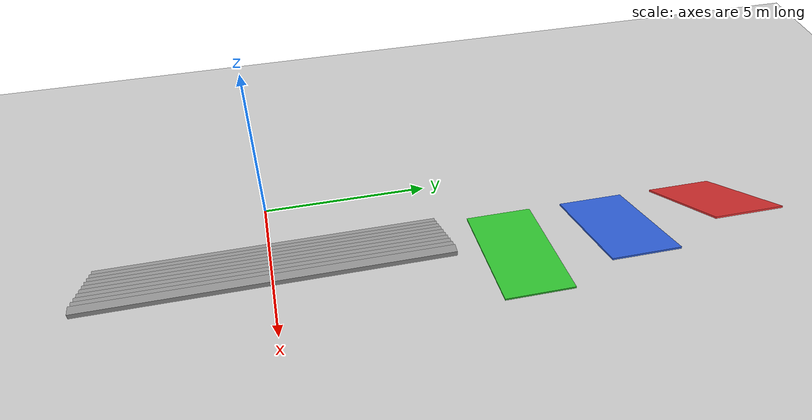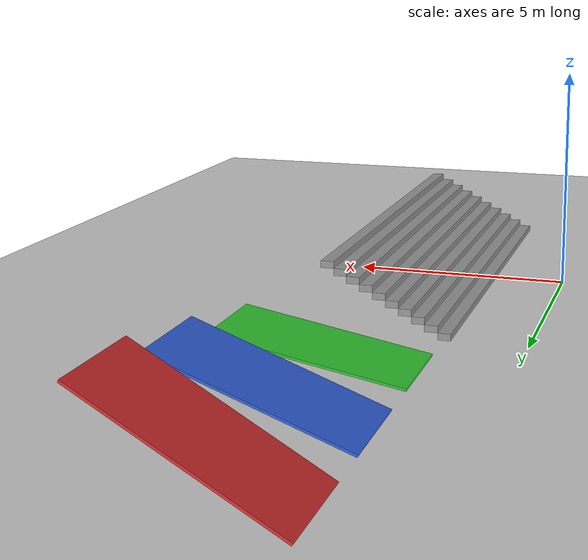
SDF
<?xml version="1.0" ?>
<sdf version="1.5">
    <world name="default">

        <physics type="ode">
            <max_step_size>0.0005</max_step_size>
            <real_time_factor>1</real_time_factor>
            <real_time_update_rate>2000</real_time_update_rate>
            <gravity>0 0 -9.81</gravity>
            <ode>
                <solver>
                    <type>quick</type>
                    <iters>50</iters>
                    <sor>1.3</sor>
                </solver>
                <constraints>
                    <cfm>0.0</cfm>
                    <erp>0.2</erp>
                    <contact_max_correcting_vel>10.0</contact_max_correcting_vel>
                    <contact_surface_layer>0.001</contact_surface_layer>
                </constraints>
            </ode>
        </physics>

        <scene>
        <sky>
            <clouds>
                <speed>12</speed>
            </clouds>
        </sky>
        </scene>
        <!-- A global light source -->
        <include>
            <uri>model://sun</uri>
        </include>
        <!-- A ground plane -->
        <include>
            <uri>model://ground_plane</uri>
        </include>
        <!-- environment blocks, obstacles or stairs -->
        <model name="static_environment">
        <static>true</static>

            <link name='Stairs'>
                <pose>3 0 0 0 0 0</pose>
                <scale>1 1 1</scale>
                <visual name='Stairs_Visual_0'>
                    <pose>-1.26 -0 0.075 0 -0 1.5708</pose>
                    <geometry>
                    <box>
                        <size>10 0.28 0.15</size>
                    </box>
                    </geometry>
                    <material>
                    <script>
                        <uri>file://media/materials/scripts/gazebo.material</uri>
                        <name>Gazebo/Grey</name>
                    </script>
                    <ambient>1 1 1 1</ambient>
                    </material>
                    <meta>
                    <layer>0</layer>
                    </meta>
                </visual>
                <collision name='Stairs_Collision_0'>
                    <geometry>
                    <box>
                        <size>10 0.28 0.15</size>
                    </box>
                    </geometry>
                    <pose>-1.26 -0 0.075 0 -0 1.5708</pose>
                </collision>
                <visual name='Stairs_Visual_1'>
                    <pose>-0.98 -0 0.225 0 -0 1.5708</pose>
                    <geometry>
                    <box>
                        <size>10 0.28 0.15</size>
                    </box>
                    </geometry>
                    <material>
                    <script>
                        <uri>file://media/materials/scripts/gazebo.material</uri>
                        <name>Gazebo/Grey</name>
                    </script>
                    <ambient>1 1 1 1</ambient>
                    </material>
                    <meta>
                    <layer>0</layer>
                    </meta>
                </visual>
                <collision name='Stairs_Collision_1'>
                    <geometry>
                    <box>
                        <size>10 0.28 0.15</size>
                    </box>
                    </geometry>
                    <pose>-0.98 -0 0.225 0 -0 1.5708</pose>
                </collision>
                <visual name='Stairs_Visual_2'>
                    <pose>-0.7 -0 0.375 0 -0 1.5708</pose>
                    <geometry>
                    <box>
                        <size>10 0.28 0.15</size>
                    </box>
                    </geometry>
                    <material>
                    <script>
                        <uri>file://media/materials/scripts/gazebo.material</uri>
                        <name>Gazebo/Grey</name>
                    </script>
                    <ambient>1 1 1 1</ambient>
                    </material>
                    <meta>
                    <layer>0</layer>
                    </meta>
                </visual>
                <collision name='Stairs_Collision_2'>
                    <geometry>
                    <box>
                        <size>10 0.28 0.15</size>
                    </box>
                    </geometry>
                    <pose>-0.7 -0 0.375 0 -0 1.5708</pose>
                </collision>
                <visual name='Stairs_Visual_3'>
                    <pose>-0.42 -0 0.525 0 -0 1.5708</pose>
                    <geometry>
                    <box>
                        <size>10 0.28 0.15</size>
                    </box>
                    </geometry>
                    <material>
                    <script>
                        <uri>file://media/materials/scripts/gazebo.material</uri>
                        <name>Gazebo/Grey</name>
                    </script>
                    <ambient>1 1 1 1</ambient>
                    </material>
                    <meta>
                    <layer>0</layer>
                    </meta>
                </visual>
                <collision name='Stairs_Collision_3'>
                    <geometry>
                    <box>
                        <size>10 0.28 0.15</size>
                    </box>
                    </geometry>
                    <pose>-0.42 -0 0.525 0 -0 1.5708</pose>
                </collision>
                <visual name='Stairs_Visual_4'>
                    <pose>-0.14 -0 0.675 0 -0 1.5708</pose>
                    <geometry>
                    <box>
                        <size>10 0.28 0.15</size>
                    </box>
                    </geometry>
                    <material>
                    <script>
                        <uri>file://media/materials/scripts/gazebo.material</uri>
                        <name>Gazebo/Grey</name>
                    </script>
                    <ambient>1 1 1 1</ambient>
                    </material>
                    <meta>
                    <layer>0</layer>
                    </meta>
                </visual>
                <collision name='Stairs_Collision_4'>
                    <geometry>
                    <box>
                        <size>10 0.28 0.15</size>
                    </box>
                    </geometry>
                    <pose>-0.14 -0 0.675 0 -0 1.5708</pose>
                </collision>
                <visual name='Stairs_Visual_5'>
                    <pose>0.14 0 0.825 0 -0 1.5708</pose>
                    <geometry>
                    <box>
                        <size>10 0.28 0.15</size>
                    </box>
                    </geometry>
                    <material>
                    <script>
                        <uri>file://media/materials/scripts/gazebo.material</uri>
                        <name>Gazebo/Grey</name>
                    </script>
                    <ambient>1 1 1 1</ambient>
                    </material>
                    <meta>
                    <layer>0</layer>
                    </meta>
                </visual>
                <collision name='Stairs_Collision_5'>
                    <geometry>
                    <box>
                        <size>10 0.28 0.15</size>
                    </box>
                    </geometry>
                    <pose>0.14 0 0.825 0 -0 1.5708</pose>
                </collision>
                <visual name='Stairs_Visual_6'>
                    <pose>0.42 0 0.975 0 -0 1.5708</pose>
                    <geometry>
                    <box>
                        <size>10 0.28 0.15</size>
                    </box>
                    </geometry>
                    <material>
                    <script>
                        <uri>file://media/materials/scripts/gazebo.material</uri>
                        <name>Gazebo/Grey</name>
                    </script>
                    <ambient>1 1 1 1</ambient>
                    </material>
                    <meta>
                    <layer>0</layer>
                    </meta>
                </visual>
                <collision name='Stairs_Collision_6'>
                    <geometry>
                    <box>
                        <size>10 0.28 0.15</size>
                    </box>
                    </geometry>
                    <pose>0.42 0 0.975 0 -0 1.5708</pose>
                </collision>
                <visual name='Stairs_Visual_7'>
                    <pose>0.7 0 1.125 0 -0 1.5708</pose>
                    <geometry>
                    <box>
                        <size>10 0.28 0.15</size>
                    </box>
                    </geometry>
                    <material>
                    <script>
                        <uri>file://media/materials/scripts/gazebo.material</uri>
                        <name>Gazebo/Grey</name>
                    </script>
                    <ambient>1 1 1 1</ambient>
                    </material>
                    <meta>
                    <layer>0</layer>
                    </meta>
                </visual>
                <collision name='Stairs_Collision_7'>
                    <geometry>
                    <box>
                        <size>10 0.28 0.15</size>
                    </box>
                    </geometry>
                    <pose>0.7 0 1.125 0 -0 1.5708</pose>
                </collision>
                <visual name='Stairs_Visual_8'>
                    <pose>0.98 0 1.275 0 -0 1.5708</pose>
                    <geometry>
                    <box>
                        <size>10 0.28 0.15</size>
                    </box>
                    </geometry>
                    <material>
                    <script>
                        <uri>file://media/materials/scripts/gazebo.material</uri>
                        <name>Gazebo/Grey</name>
                    </script>
                    <ambient>1 1 1 1</ambient>
                    </material>
                    <meta>
                    <layer>0</layer>
                    </meta>
                </visual>
                <collision name='Stairs_Collision_8'>
                    <geometry>
                    <box>
                        <size>10 0.28 0.15</size>
                    </box>
                    </geometry>
                    <pose>0.98 0 1.275 0 -0 1.5708</pose>
                </collision>
                <visual name='Stairs_Visual_9'>
                    <pose>1.26 0 1.425 0 -0 1.5708</pose>
                    <geometry>
                    <box>
                        <size>10 0.28 0.15</size>
                    </box>
                    </geometry>
                    <material>
                    <script>
                        <uri>file://media/materials/scripts/gazebo.material</uri>
                        <name>Gazebo/Grey</name>
                    </script>
                    <ambient>1 1 1 1</ambient>
                    </material>
                    <meta>
                    <layer>0</layer>
                    </meta>
                </visual>
                <collision name='Stairs_Collision_9'>
                    <geometry>
                    <box>
                        <size>10 0.28 0.15</size>
                    </box>
                    </geometry>
                    <pose>1.26 0 1.425 0 -0 1.5708</pose>
                </collision>
            </link>

            <!-- 10 degree ramp -->
            <link name='Ramp_10deg'>
                <pose>3.71 7 0.372 0 -0.1745 0</pose>
                <collision name='Ramp_10deg_collision'>
                    <geometry>
                        <box>
                            <size>4 2 0.05</size>
                        </box>
                    </geometry>
                </collision>
                <visual name='Ramp_10deg_visual'>
                    <geometry>
                        <box>
                            <size>4 2 0.05</size>
                        </box>
                    </geometry>
                    <material>
                        <ambient>0.2 0.8 0.2 1.0</ambient>
                        <diffuse>0.2 0.8 0.2 1.0</diffuse>
                    </material>
                </visual>
            </link>

            <!-- 20 degree ramp -->
            <link name='Ramp_20deg'>
                <pose>3.62 10 0.708 0 -0.3491 0</pose>
                <collision name='Ramp_20deg_collision'>
                    <geometry>
                        <box>
                            <size>4 2 0.05</size>
                        </box>
                    </geometry>
                </collision>
                <visual name='Ramp_20deg_visual'>
                    <geometry>
                        <box>
                            <size>4 2 0.05</size>
                        </box>
                    </geometry>
                    <material>
                        <ambient>0.2 0.4 0.9 1.0</ambient>
                        <diffuse>0.2 0.4 0.9 1.0</diffuse>
                    </material>
                </visual>
            </link>

            <!-- 30 degree ramp -->
            <link name='Ramp_30deg'>
                <pose>3.47 13 1.022 0 -0.5236 0</pose>
                <collision name='Ramp_30deg_collision'>
                    <geometry>
                        <box>
                            <size>4 2 0.05</size>
                        </box>
                    </geometry>
                </collision>
                <visual name='Ramp_30deg_visual'>
                    <geometry>
                        <box>
                            <size>4 2 0.05</size>
                        </box>
                    </geometry>
                    <material>
                        <ambient>0.9 0.2 0.2 1.0</ambient>
                        <diffuse>0.9 0.2 0.2 1.0</diffuse>
                    </material>
                </visual>
            </link>
        </model>

    </world>
</sdf>
